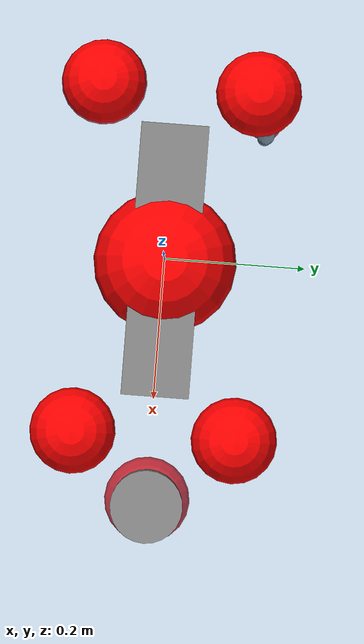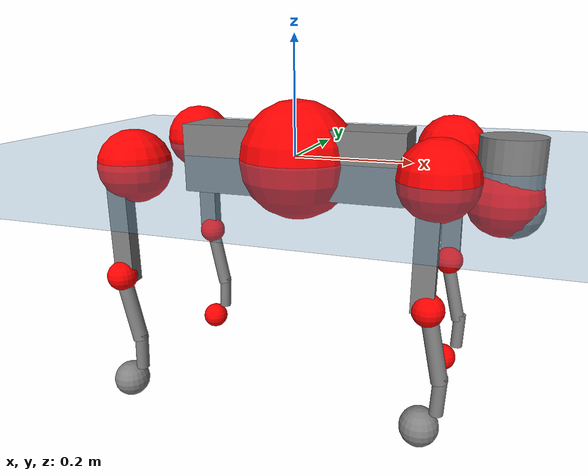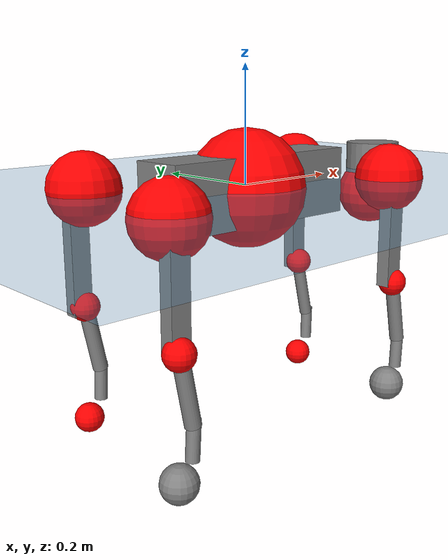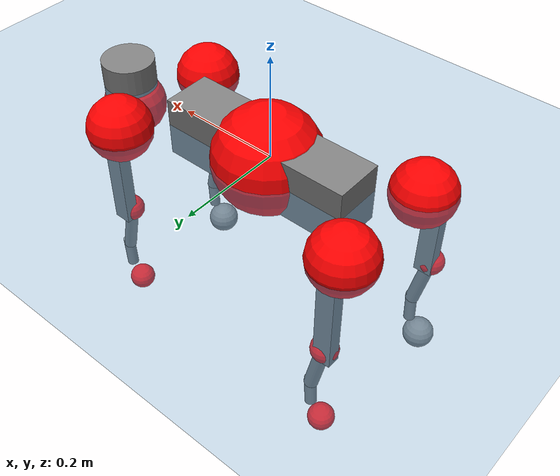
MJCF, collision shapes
<mujoco model="go2">
  <compiler angle="radian" assetdir="assets" balanceinertia="true" inertiafromgeom="false"/>

  <option timestep="0.005" density="1.2" viscosity="2e-05"/>

  <size nkey="1"/>

  <visual>
    <quality shadowsize="8192"/>
    <map shadowclip="0.5"/>
  </visual>

  <default>
    <default class="/">
      <geom contype="0" conaffinity="0" group="1" solref="-1000 -80"/>
      <site size="0.01 0.005 0.005" group="5"/>
      <general forcelimited="true" biastype="affine" gainprm="20" biasprm="0 -20 -0.5"/>
      <default class="go2">
        <joint armature="0.01" damping="0.01" frictionloss="0.2"/>
        <geom condim="1" margin="0.001"/>
        <default class="visual">
          <geom type="mesh" group="2"/>
        </default>
        <default class="collision">
          <geom group="3"/>
          <default class="foot">
            <geom size="0.022 0 0" condim="6" priority="1" friction="0.8 0.02 0.01" solimp="0.015 1 0.022"/>
          </default>
        </default>
        <default class="reward_collision_sphere">
          <geom group="5" rgba="1 0 0 1"/>
        </default>
      </default>
    </default>
  </default>

  <asset>
    <texture type="skybox" colorspace="auto" name="//unnamed_texture_0" builtin="gradient" rgb1="0.95 0.95 0.95" rgb2="0.95 0.95 0.95" width="100" height="600"/>
    <texture type="2d" colorspace="auto" name="texplane" builtin="checker" rgb1="0.345 0.575 0.748" rgb2="0.345 0.575 0.748" markrgb="1 1 1" width="512" height="512"/>
    <material name="MatPlane" class="/" texture="texplane" texuniform="true" texrepeat="2 2" specular="0.9"/>
    <material name="metal" class="/" rgba="0.9 0.95 0.95 1"/>
    <material name="black" class="/" rgba="0 0 0 1"/>
    <material name="white" class="/"/>
    <material name="gray" class="/" rgba="0.671705 0.692426 0.77427 1"/>
    <mesh name="base_0" class="/" file="base_0.obj"/>
    <mesh name="base_1" class="/" file="base_1.obj"/>
    <mesh name="base_2" class="/" file="base_2.obj"/>
    <mesh name="base_3" class="/" file="base_3.obj"/>
    <mesh name="base_4" class="/" file="base_4.obj"/>
    <mesh name="hip_0" class="/" file="hip_0.obj"/>
    <mesh name="hip_1" class="/" file="hip_1.obj"/>
    <mesh name="thigh_0" class="/" file="thigh_0.obj"/>
    <mesh name="thigh_1" class="/" file="thigh_1.obj"/>
    <mesh name="thigh_mirror_0" class="/" file="thigh_mirror_0.obj"/>
    <mesh name="thigh_mirror_1" class="/" file="thigh_mirror_1.obj"/>
    <mesh name="calf_0" class="/" file="calf_0.obj"/>
    <mesh name="calf_1" class="/" file="calf_1.obj"/>
    <mesh name="calf_mirror_0" class="/" file="calf_mirror_0.obj"/>
    <mesh name="calf_mirror_1" class="/" file="calf_mirror_1.obj"/>
    <mesh name="foot" class="/" file="foot.obj"/>
  </asset>

  <worldbody>
    <geom name="floor" class="/" size="100 100 0.125" type="plane" group="0" material="MatPlane"/>
    <light name="toplight_shadow" class="/" pos="0 0 5" dir="0.0990148 0.0990148 -0.990148" type="directional" ambient="0.04 0.04 0.04" diffuse="0.55 0.55 0.55" specular="0.12 0.12 0.12"/>
    <light name="toplight_fill" class="/" pos="0 0 5" dir="0.0990148 0.0990148 -0.990148" type="directional" castshadow="false" ambient="0.04 0.04 0.04" diffuse="0.3 0.3 0.3" specular="0.08 0.08 0.08"/>
    <body name="trunk" childclass="go2" pos="0.00435292 0.00107836 -0.00565736" quat="0.999994 -0.00342308 -0.000257027 0.000455737">
      <inertial pos="0.0412027 0.0123938 0.00166654" quat="0.00282785 0.700621 -0.00624774 0.713501" mass="5.98378" diaginertia="0.284595 0.0582165 0.0171949"/>
      <joint name="//unnamed_joint_0" type="free" armature="0" damping="0" frictionloss="0"/>
      <geom name="//unnamed_geom_1" class="visual" material="black" mesh="base_0"/>
      <geom name="//unnamed_geom_2" class="visual" material="black" mesh="base_1"/>
      <geom name="//unnamed_geom_3" class="visual" material="black" mesh="base_2"/>
      <geom name="//unnamed_geom_4" class="visual" material="white" mesh="base_3"/>
      <geom name="//unnamed_geom_5" class="visual" material="gray" mesh="base_4"/>
      <geom name="trunk_1" class="collision" size="0.192078 0.0477387 0.0582054" type="box"/>
      <geom name="trunk_2" class="collision" size="0.0510574 0.0459517" pos="0.346762 0 0.00942609" type="cylinder"/>
      <geom name="trunk_3" class="collision" size="0.047994" pos="0.356495 0 -0.0565566"/>
      <geom name="//unnamed_geom_9" class="reward_collision_sphere" size="0.102115"/>
      <geom name="//unnamed_geom_10" class="reward_collision_sphere" size="0.0612689" pos="0.340678 0 -0.0424174"/>
      <site name="imu" pos="-0.0989205 -0.00289945 0.10742" size="0.0102115"/>
      <camera name="track" pos="0 -1.80825 0" quat="0.707107 0.707107 0 0" mode="trackcom"/>
      <camera name="ego_camera" pos="0.379613 0 0.0424174" quat="-0.5 -0.5 0.5 0.5"/>
      <body name="FL_hip" pos="0.246288 0.0534927 0.0107848" quat="0.999999 0.000780815 0.000803484 -9.16208e-05">
        <inertial pos="-0.00631609 0.0125332 0.0012604" quat="0.49316 0.500316 0.505194 0.501255" mass="0.778604" diaginertia="0.00282879 0.0004917 0.000432195"/>
        <joint name="FL_hip_joint" pos="0 0 0" axis="0.999545 0.00347287 0.0299668" stiffness="0.0475774" range="-1.05889 0.915475" armature="0.0100698" damping="0" frictionloss="0.302115"/>
        <geom name="//unnamed_geom_11" class="visual" material="metal" mesh="hip_0"/>
        <geom name="//unnamed_geom_12" class="visual" material="gray" mesh="hip_1"/>
        <geom name="//unnamed_geom_13" class="collision" size="0.0469728 0.020423" pos="0 0.0723302 0" quat="0.707107 0.707107 0 0" type="cylinder"/>
        <geom name="//unnamed_geom_14" class="reward_collision_sphere" size="0.0612689" pos="0 0.0632889 0"/>
        <body name="FL_thigh" pos="0.00839731 0.0719881 -0.00753823" quat="0.999979 -0.00103359 -0.00603721 -0.00208973">
          <inertial pos="-0.0046849 -0.0205833 -0.0389198" quat="0.829 0.1389 -0.0189532 0.541393" mass="1.40484" diaginertia="0.0159437 0.00425812 0.000623929"/>
          <joint name="FL_thigh_joint" pos="0 0 0" axis="-0.0196602 0.999804 -0.00214083" stiffness="0.00115221" range="-1.82115 3.30121" armature="0.0123636" damping="0" frictionloss="0.289582"/>
          <geom name="//unnamed_geom_15" class="visual" material="metal" mesh="thigh_0"/>
          <geom name="//unnamed_geom_16" class="visual" material="gray" mesh="thigh_1"/>
          <geom name="//unnamed_geom_17" class="collision" size="0.108752 0.0125091 0.0173595" pos="0 0 -0.100388" quat="0.707107 0 0.707107 0" type="box"/>
          <body name="FL_calf" pos="-0.000556881 -0.0128987 -0.19637" quat="0.999998 -0.000546771 -0.000961794 -0.00163577">
            <inertial pos="0.00692502 -0.00407104 -0.126015" quat="0.710161 0.00164201 -0.00545149 0.704016" mass="0.2695" diaginertia="0.0047334 0.000899122 3.9211e-05"/>
            <joint name="FL_calf_joint" pos="0 0 0" axis="0.00844704 0.999963 -0.00138238" stiffness="0.0606905" range="-2.91077 -0.828835" armature="0.00767714" damping="0.00379238" frictionloss="0.208333"/>
            <geom name="//unnamed_geom_18" class="visual" material="gray" mesh="calf_0"/>
            <geom name="//unnamed_geom_19" class="visual" material="black" mesh="calf_1"/>
            <geom name="FL_calf0" class="collision" size="0.0122538 0.0612689" pos="0.00973367 0 -0.0565566" quat="0.994493 0 -0.104807 0" type="cylinder"/>
            <geom name="//unnamed_geom_21" class="collision" size="0.0112326 0.0331873" pos="0.0243342 0 -0.139506" quat="0.999688 0 0.0249974 0" type="cylinder"/>
            <geom name="//unnamed_geom_22" class="visual" pos="0 0 -0.200776" quat="1 0 0 0" material="black" mesh="foot"/>
            <geom name="FL_foot" class="foot" size="0.0232332" pos="-0.00243342 0 -0.200776"/>
            <geom name="//unnamed_geom_24" class="reward_collision_sphere" size="0.0255287"/>
            <geom name="//unnamed_geom_25" class="reward_collision_sphere" size="0.0255287" pos="-0.00243342 0 -0.200776"/>
            <site name="FL_foot" class="foot" pos="-0.00243342 0 -0.200776" size="0.0102115"/>
          </body>
        </body>
      </body>
      <body name="FR_hip" pos="0.249194 -0.0494326 0.00370627" quat="1 0.000125557 -0.000266299 -0.000951806">
        <inertial pos="0.00255061 0.0140136 0.00933366" quat="0.533084 0.467195 0.461707 0.53327" mass="0.706626" diaginertia="0.00259272 0.000288999 0.000390336"/>
        <joint name="FR_hip_joint" pos="0 0 0" axis="0.998383 -0.0189669 0.0535806" range="-1.10359 1.01617" armature="0.00985098" damping="0.0564716" frictionloss="0.143548"/>
        <geom name="//unnamed_geom_26" class="visual" pos="0 -3.35241e-10 -1.43792e-08" quat="4.63268e-05 1 0 0" material="metal" mesh="hip_0"/>
        <geom name="//unnamed_geom_27" class="visual" pos="0 -5.43466e-10 3.55652e-08" quat="4.63268e-05 1 0 0" material="gray" mesh="hip_1"/>
        <geom name="//unnamed_geom_28" class="collision" size="0.0469728 0.020423" pos="0 -0.0723302 0" quat="0.707107 0.707107 0 0" type="cylinder"/>
        <geom name="//unnamed_geom_29" class="reward_collision_sphere" size="0.0612689" pos="0 -0.0632889 0"/>
        <body name="FR_thigh" pos="-0.00803105 -0.0784002 0.0118918" quat="0.999982 0.00174959 0.0056804 7.36418e-05">
          <inertial pos="-0.0182146 0.025195 -0.0224603" quat="0.524027 0.00444374 0.100156 0.84578" mass="1.09905" diaginertia="0.0183976 0.00421532 0.000564683"/>
          <joint name="FR_thigh_joint" pos="0 0 0" axis="0.0125784 -0.999618 -0.0245924" stiffness="0.00187721" range="-3.60361 1.63829" armature="0.0145266" damping="0" frictionloss="0.137088"/>
          <geom name="//unnamed_geom_30" class="visual" material="metal" mesh="thigh_mirror_0"/>
          <geom name="//unnamed_geom_31" class="visual" material="gray" mesh="thigh_mirror_1"/>
          <geom name="//unnamed_geom_32" class="collision" size="0.108752 0.0125091 0.0173595" pos="0 0 -0.100388" quat="0.707107 0 0.707107 0" type="box"/>
          <body name="FR_calf" pos="0.00861541 -0.00343858 -0.204425" quat="0.999991 0.00163032 -0.00367031 -0.00120138">
            <inertial pos="0.0185765 0.00067247 -0.13299" quat="0.713306 -0.047513 0.0575027 0.696872" mass="0.197601" diaginertia="0.00314446 0.000828513 3.44465e-05"/>
            <joint name="FR_calf_joint" pos="0 0 0" axis="-0.0200378 -0.999793 -0.00349985" stiffness="0.0670559" range="1.11507 2.89747" armature="0.00388107" damping="0" frictionloss="0.133"/>
            <geom name="//unnamed_geom_33" class="visual" material="gray" mesh="calf_mirror_0"/>
            <geom name="//unnamed_geom_34" class="visual" material="black" mesh="calf_mirror_1"/>
            <geom name="FR_calf0" class="collision" size="0.0132749 0.0612689" pos="0.0121671 0 -0.0565566" quat="0.995004 0 -0.0998334 0" type="cylinder"/>
            <geom name="//unnamed_geom_36" class="collision" size="0.0112326 0.0331873" pos="0.0243342 0 -0.139506" quat="0.999688 0 0.0249974 0" type="cylinder"/>
            <geom name="//unnamed_geom_37" class="visual" pos="0 0 -0.200776" quat="1 0 0 0" material="black" mesh="foot"/>
            <geom name="FR_foot" class="foot" size="0.031761" pos="-0.00243342 0 -0.200776"/>
            <geom name="//unnamed_geom_39" class="reward_collision_sphere" size="0.0255287"/>
            <geom name="//unnamed_geom_40" class="reward_collision_sphere" size="0.0255287" pos="-0.00243342 0 -0.200776"/>
            <site name="FR_foot" class="foot" pos="-0.00243342 0 -0.200776" size="0.0102115"/>
          </body>
        </body>
      </body>
      <body name="RL_hip" pos="-0.247975 0.0519516 0.0124224" quat="1 0.000174305 3.6076e-05 7.12166e-05">
        <inertial pos="0.00545802 -0.00807194 0.0142177" quat="0.487987 0.531048 0.459178 0.518664" mass="0.591046" diaginertia="0.00156178 0.000311286 0.00032446"/>
        <joint name="RL_hip_joint" pos="0 0 0" axis="-0.998391 -0.0553011 -0.0125387" stiffness="0.0329433" range="-1.05752 0.933093" armature="0.0105059" damping="0.0730979" frictionloss="0.1971"/>
        <geom name="//unnamed_geom_41" class="visual" pos="-2.38783e-09 0 -4.68071e-07" quat="4.63268e-05 0 1 0" material="metal" mesh="hip_0"/>
        <geom name="//unnamed_geom_42" class="visual" pos="-3.87097e-09 0 -4.15112e-07" quat="4.63268e-05 0 1 0" material="gray" mesh="hip_1"/>
        <geom name="//unnamed_geom_43" class="collision" size="0.0469728 0.020423" pos="0 0.0723302 0" quat="0.707107 0.707107 0 0" type="cylinder"/>
        <geom name="//unnamed_geom_44" class="reward_collision_sphere" size="0.0612689" pos="0 0.0632889 0"/>
        <body name="RL_thigh" pos="-0.000999051 0.0929271 -0.00698845" quat="0.999996 0.00220641 0.00199598 -0.000301022">
          <inertial pos="0.0109451 -0.0256868 -0.0165137" quat="0.830918 0.085928 -0.019967 0.549357" mass="1.49118" diaginertia="0.021193 0.00347536 0.000681107"/>
          <joint name="RL_thigh_joint" pos="0 0 0" axis="0.00910017 0.999956 -0.00221887" range="-0.370029 4.7274" armature="0.00839009" damping="0.0615705" frictionloss="0.193655"/>
          <geom name="//unnamed_geom_45" class="visual" material="metal" mesh="thigh_0"/>
          <geom name="//unnamed_geom_46" class="visual" material="gray" mesh="thigh_1"/>
          <geom name="//unnamed_geom_47" class="collision" size="0.108752 0.0125091 0.0173595" pos="0 0 -0.100388" quat="0.707107 0 0.707107 0" type="box"/>
          <body name="RL_calf" pos="0.00631184 -0.00609259 -0.194766" quat="1 -0.000857557 0.000107734 0.000225184">
            <inertial pos="-4.18114e-05 -0.0131905 -0.127967" quat="0.682646 -0.00235128 -0.0279255 0.730212" mass="0.204048" diaginertia="0.00358216 0.000601378 2.97856e-05"/>
            <joint name="RL_calf_joint" pos="0 0 0" axis="-0.00447231 0.999987 0.00248001" range="-2.96775 -0.640095" armature="0.00330833" damping="0" frictionloss="0.324024"/>
            <geom name="//unnamed_geom_48" class="visual" material="gray" mesh="calf_0"/>
            <geom name="//unnamed_geom_49" class="visual" material="black" mesh="calf_1"/>
            <geom name="RL_calf0" class="collision" size="0.0132749 0.0612689" pos="0.0121671 0 -0.0565566" quat="0.995004 0 -0.0998334 0" type="cylinder"/>
            <geom name="//unnamed_geom_51" class="collision" size="0.0112326 0.0331873" pos="0.0243342 0 -0.139506" quat="0.999688 0 0.0249974 0" type="cylinder"/>
            <geom name="//unnamed_geom_52" class="visual" pos="0 0 -0.200776" quat="1 0 0 0" material="black" mesh="foot"/>
            <geom name="RL_foot" class="foot" size="0.0172484" pos="-0.00243342 0 -0.200776"/>
            <geom name="//unnamed_geom_54" class="reward_collision_sphere" size="0.0255287"/>
            <geom name="//unnamed_geom_55" class="reward_collision_sphere" size="0.0255287" pos="-0.00243342 0 -0.200776"/>
            <site name="RL_foot" class="foot" pos="-0.00243342 0 -0.200776" size="0.0102115"/>
          </body>
        </body>
      </body>
      <body name="RR_hip" pos="-0.25085 -0.0428082 -0.00652922" quat="1 -8.19705e-05 -0.000361217 -0.000361598">
        <inertial pos="0.0152613 -0.00978279 0.0140557" quat="0.499204 0.558138 0.477773 0.459358" mass="0.732711" diaginertia="0.00284222 0.000430594 0.000419259"/>
        <joint name="RR_hip_joint" pos="0 0 0" axis="-0.997779 0.0239668 -0.0621443" range="-0.790595 0.888739" armature="0.0136886" damping="0.0490658" frictionloss="0.211498"/>
        <geom name="//unnamed_geom_56" class="visual" pos="2.37701e-09 -3.35241e-10 -4.53691e-07" quat="2.14617e-09 4.63268e-05 4.63268e-05 -1" material="metal" mesh="hip_0"/>
        <geom name="//unnamed_geom_57" class="visual" pos="3.89773e-09 -5.43466e-10 -4.50677e-07" quat="2.14617e-09 4.63268e-05 4.63268e-05 -1" material="gray" mesh="hip_1"/>
        <geom name="//unnamed_geom_58" class="collision" size="0.0469728 0.020423" pos="0 -0.0723302 0" quat="0.707107 0.707107 0 0" type="cylinder"/>
        <geom name="//unnamed_geom_59" class="reward_collision_sphere" size="0.0612689" pos="0 -0.0632889 0"/>
        <body name="RR_thigh" pos="-0.0144084 -0.0920981 0.0127805" quat="0.999982 0.0056745 0.00168234 0.000674121">
          <inertial pos="-0.00482966 0.0115739 -0.0348565" quat="0.549345 -0.0247422 0.0842262 0.830972" mass="1.54851" diaginertia="0.0200494 0.00399812 0.000748852"/>
          <joint name="RR_thigh_joint" pos="0 0 0" axis="0.0112254 -0.99988 -0.0106318" stiffness="0.00888396" range="-4.71166 0.62558" armature="0.0117491" damping="0" frictionloss="0.194554"/>
          <geom name="//unnamed_geom_60" class="visual" material="metal" mesh="thigh_mirror_0"/>
          <geom name="//unnamed_geom_61" class="visual" material="gray" mesh="thigh_mirror_1"/>
          <geom name="//unnamed_geom_62" class="collision" size="0.108752 0.0125091 0.0173595" pos="0 0 -0.100388" quat="0.707107 0 0.707107 0" type="box"/>
          <body name="RR_calf" pos="-0.00397856 -0.0114291 -0.198043" quat="0.999977 0.00409297 0.00114658 0.00529479">
            <inertial pos="-0.00385028 0.00746996 -0.137939" quat="0.721197 -0.0246431 0.0445912 0.690854" mass="0.244248" diaginertia="0.00433897 0.00087466 4.38071e-05"/>
            <joint name="RR_calf_joint" pos="0 0 0" axis="-0.00180679 -0.99936 0.0357366" range="0.87507 2.46157" armature="0.0110794" damping="0" frictionloss="0.133822"/>
            <geom name="//unnamed_geom_63" class="visual" material="gray" mesh="calf_mirror_0"/>
            <geom name="//unnamed_geom_64" class="visual" material="black" mesh="calf_mirror_1"/>
            <geom name="RR_calf0" class="collision" size="0.0132749 0.0612689" pos="0.0121671 0 -0.0565566" quat="0.995004 0 -0.0998334 0" type="cylinder"/>
            <geom name="//unnamed_geom_66" class="collision" size="0.0112326 0.0331873" pos="0.0243342 0 -0.139506" quat="0.999688 0 0.0249974 0" type="cylinder"/>
            <geom name="//unnamed_geom_67" class="visual" pos="0 0 -0.200776" quat="1 0 0 0" material="black" mesh="foot"/>
            <geom name="RR_foot" class="foot" size="0.0307311" pos="-0.00243342 0 -0.200776"/>
            <geom name="//unnamed_geom_69" class="reward_collision_sphere" size="0.0255287"/>
            <geom name="//unnamed_geom_70" class="reward_collision_sphere" size="0.0255287" pos="-0.00243342 0 -0.200776"/>
            <site name="RR_foot" class="foot" pos="-0.00243342 0 -0.200776" size="0.0102115"/>
          </body>
        </body>
      </body>
    </body>
  </worldbody>

  <contact>
    <pair class="/" geom1="floor" geom2="FL_foot" name="//unnamed_contact_0"/>
    <pair class="/" geom1="floor" geom2="FR_foot" name="//unnamed_contact_1"/>
    <pair class="/" geom1="floor" geom2="RL_foot" name="//unnamed_contact_2"/>
    <pair class="/" geom1="floor" geom2="RR_foot" name="//unnamed_contact_3"/>
  </contact>

  <actuator>
    <general name="FL_hip" class="/" joint="FL_hip_joint" forcerange="-34.2156 34.2156" gainprm="24.7132" biasprm="0 -24.7132 -0.616373"/>
    <general name="FL_thigh" class="/" joint="FL_thigh_joint" forcerange="-37.0179 37.0179" gainprm="24.7132" biasprm="0 -24.7132 -0.616373"/>
    <general name="FL_calf" class="/" joint="FL_calf_joint" forcerange="-55.9714 55.9714" gainprm="24.7132" biasprm="0 -24.7132 -0.616373"/>
    <general name="FR_hip" class="/" joint="FR_hip_joint" forcerange="-24.2714 24.2714" gainprm="24.7132" biasprm="0 -24.7132 -0.616373"/>
    <general name="FR_thigh" class="/" joint="FR_thigh_joint" forcerange="-15.0648 15.0648" gainprm="24.7132" biasprm="0 -24.7132 -0.616373"/>
    <general name="FR_calf" class="/" joint="FR_calf_joint" forcerange="-52.2668 52.2668" gainprm="24.7132" biasprm="0 -24.7132 -0.616373"/>
    <general name="RL_hip" class="/" joint="RL_hip_joint" forcerange="-23.6194 23.6194" gainprm="24.7132" biasprm="0 -24.7132 -0.616373"/>
    <general name="RL_thigh" class="/" joint="RL_thigh_joint" forcerange="-33.7059 33.7059" gainprm="24.7132" biasprm="0 -24.7132 -0.616373"/>
    <general name="RL_calf" class="/" joint="RL_calf_joint" forcerange="-36.2905 36.2905" gainprm="24.7132" biasprm="0 -24.7132 -0.616373"/>
    <general name="RR_hip" class="/" joint="RR_hip_joint" forcerange="-26.3535 26.3535" gainprm="24.7132" biasprm="0 -24.7132 -0.616373"/>
    <general name="RR_thigh" class="/" joint="RR_thigh_joint" forcerange="-13.0551 13.0551" gainprm="24.7132" biasprm="0 -24.7132 -0.616373"/>
    <general name="RR_calf" class="/" joint="RR_calf_joint" forcerange="-40.0006 40.0006" gainprm="24.7132" biasprm="0 -24.7132 -0.616373"/>
  </actuator>

  <sensor>
    <gyro site="imu" name="imu_angular_velocity"/>
    <velocimeter site="imu" name="imu_linear_velocity"/>
    <framelinvel objtype="site" objname="FL_foot" name="FL_foot_global_linear_velocity"/>
    <framelinvel objtype="site" objname="FR_foot" name="FR_foot_global_linear_velocity"/>
    <framelinvel objtype="site" objname="RL_foot" name="RL_foot_global_linear_velocity"/>
    <framelinvel objtype="site" objname="RR_foot" name="RR_foot_global_linear_velocity"/>
  </sensor>

  <keyframe>
    <key name="home" qpos="0 0 0.325 1 0 0 0 0.1 0.8 -1.5 -0.1 -0.8 1.5 -0.1 0.8 -1.5 0.1 -0.8 1.5"/>
  </keyframe>
</mujoco>
